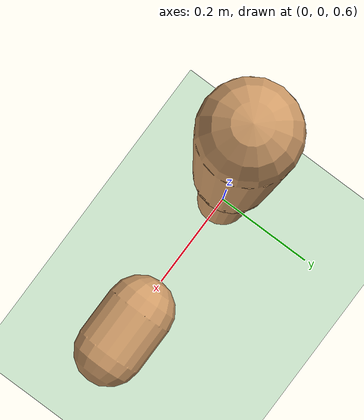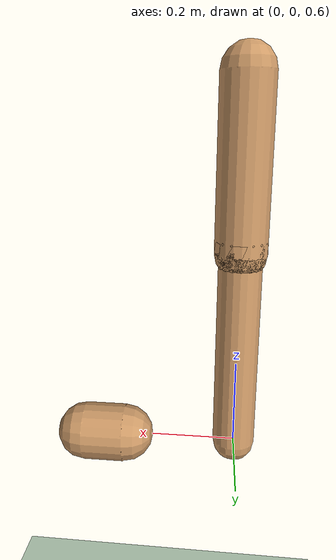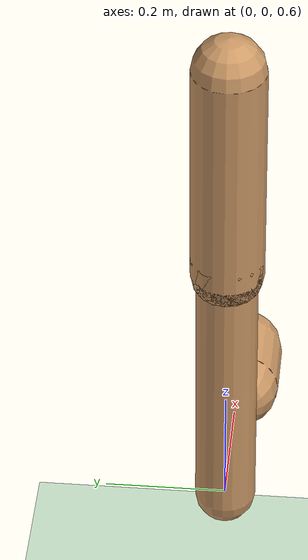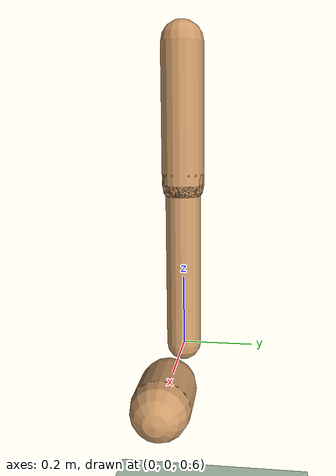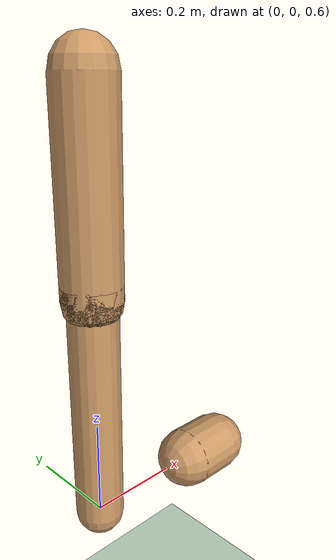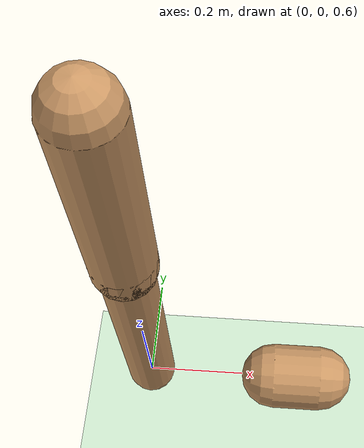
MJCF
<mujoco model="walker2d">
    <compiler angle="degree" coordinate="global" inertiafromgeom="true"/>
    <default>
      <joint armature="0.01" damping=".1" limited="true"/>
      <geom conaffinity="0" condim="3" contype="1" density="1000" friction=".7 .1 .1" rgba="0.8 0.6 .4 1"/>
    </default>
    <option integrator="RK4" timestep="0.002"/>

    <worldbody>
      <light cutoff="100" diffuse="1 1 1" dir="-0 0 -1.3" directional="true" exponent="1" pos="0 0 1.3" specular=".1 .1 .1"/>
      <geom conaffinity="1" condim="3" name="floor" pos="0 0 0" rgba="0.8 0.9 0.8 1" size="20 20 .125" type="plane" material="MatPlane"/>

      <body name="torso">
        <camera name="track" mode="trackcom" pos="0 -3 -0.25" xyaxes="1 0 0 0 0 1"/>
        <joint armature="0" axis="1 0 0" damping="0" limited="false" name="ignore1" pos="0 0 0" stiffness="0" type="slide"/>
        <joint armature="0" axis="0 0 1" damping="0" limited="false" name="ignore2" pos="0 0 0" ref="1.25" stiffness="0" type="slide"/>
        <joint armature="0" axis="0 1 0" damping="0" limited="false" name="ignore3" pos="0 0 0" stiffness="0" type="hinge"/>
        <geom fromto="0 0 1.4599999997764825 0 0 1.0699999997764826" name="torso_geom" size="0.059999999776482585" type="capsule" friction="0.9"/>
        <body name="thigh">
          <joint axis="0 -1 0" name="thigh_joint" pos="0 0 1.0699999997764826" range="-150 0" type="hinge"/>
          <geom fromto="0 0 1.0699999997764826 0 0 1.1" name="thigh_geom" size="0.059999999776482585" type="capsule" friction="0.9"/>
          <body name="leg">
            <joint axis="0 -1 0" name="leg_joint" pos="0 0 1.1" range="-150 0" type="hinge"/>
            <geom fromto="0 0 1.1 0 0 0.6" name="leg_geom" size="0.04999999977648258" type="capsule" friction="0.9"/>
            <body name="foot">
              <joint axis="0 -1 0" name="foot_joint" pos="0 0 0.6" range="-45 45" type="hinge"/>
              <geom fromto="0.37 0 0.6 0.2699999997764826 0 0.6" name="foot_geom" size="0.06999999977648258" type="capsule" friction="1.9"/>
            </body>
          </body>
        </body>
        <body name="thigh_left">
          <joint axis="0 -1 0" name="thigh_left_joint" pos="0 0 1.0699999997764826" range="-150 0" type="hinge"/>
          <geom fromto="0 0 1.0699999997764826 0 0 1.1" name="thigh_left_geom" size="0.059999999776482585" type="capsule" friction="0.9"/>
          <body name="leg_left">
            <joint axis="0 -1 0" name="leg_left_joint" pos="0 0 1.1" range="-150 0" type="hinge"/>
            <geom fromto="0 0 1.1 0 0 0.6" name="leg_left_geom" size="0.04999999977648258" type="capsule" friction="0.9"/>
            <body name="foot_left">
              <joint axis="0 -1 0" name="foot_left_joint" pos="0 0 0.6" range="-45 45" type="hinge"/>
              <geom fromto="0.37 0 0.6 0.2699999997764826 0 0.6" name="foot_left_geom" size="0.06999999977648258" type="capsule" friction="1.9"/>
            </body>
          </body>
        </body>
      </body>
    </worldbody>

    <actuator>
      <motor ctrllimited="true" ctrlrange="-1.0 1.0" gear="100" joint="thigh_joint"/>
      <motor ctrllimited="true" ctrlrange="-1.0 1.0" gear="100" joint="leg_joint"/>
      <motor ctrllimited="true" ctrlrange="-1.0 1.0" gear="100" joint="foot_joint"/>
      <motor ctrllimited="true" ctrlrange="-1.0 1.0" gear="100" joint="thigh_left_joint"/>
      <motor ctrllimited="true" ctrlrange="-1.0 1.0" gear="100" joint="leg_left_joint"/>
      <motor ctrllimited="true" ctrlrange="-1.0 1.0" gear="100" joint="foot_left_joint"/>
    </actuator>
      <asset>
        <texture type="skybox" builtin="gradient" rgb1=".4 .5 .6" rgb2="0 0 0"
            width="100" height="100"/>
        <texture builtin="flat" height="1278" mark="cross" markrgb="1 1 1" name="texgeom" random="0.01" rgb1="0.8 0.6 0.4" rgb2="0.8 0.6 0.4" type="cube" width="127"/>
        <texture builtin="checker" height="100" name="texplane" rgb1="0 0 0" rgb2="0.8 0.8 0.8" type="2d" width="100"/>
        <material name="MatPlane" reflectance="0.5" shininess="1" specular="1" texrepeat="60 60" texture="texplane"/>
        <material name="geom" texture="texgeom" texuniform="true"/>
      </asset>
  </mujoco>
